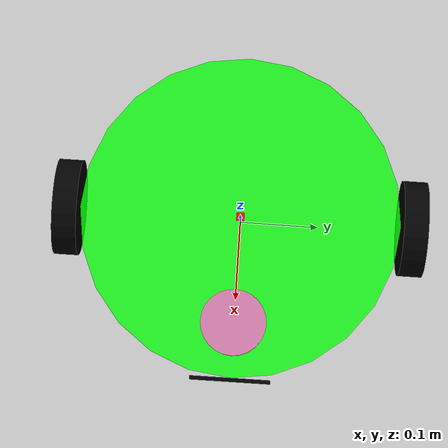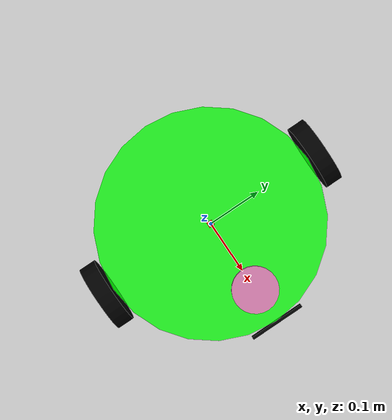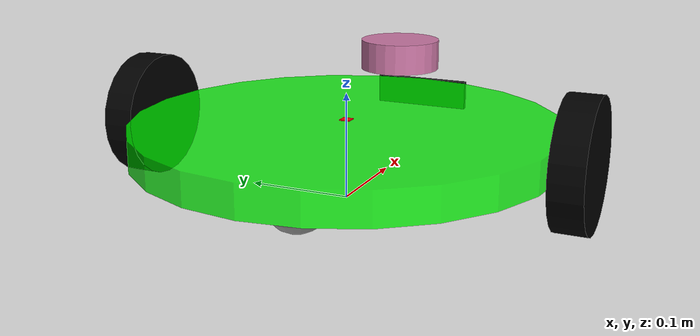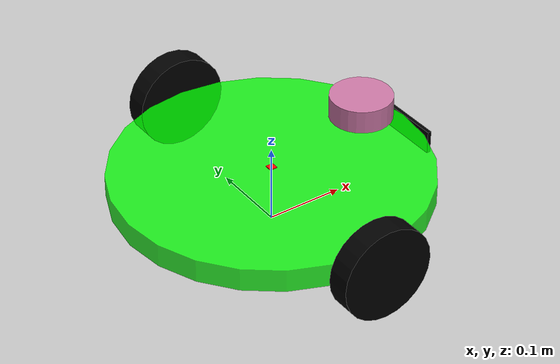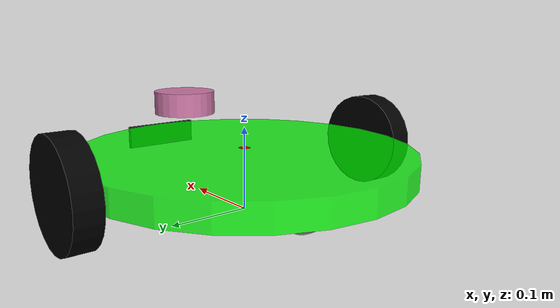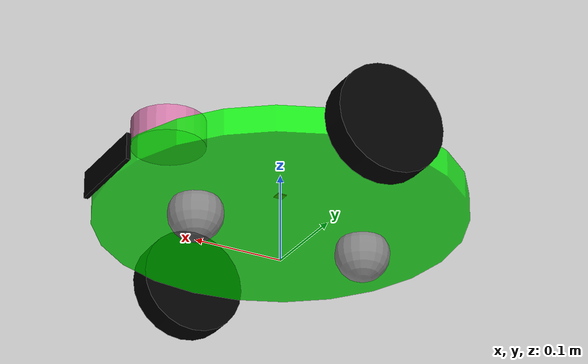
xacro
<?xml version="1.0"?>
<robot name="corbis" xmlns:xacro="htpp://www.ros.org/wiki/xacro">

    <xacro:property name="body_radius" value="0.2"/>
    <xacro:property name="body_height" value="0.03"/>
    <xacro:property name="wheel_radius" value="0.06"/>
    <xacro:property name="wheel_height" value="0.03"/>

    <material name="black">
        <color rgba="0.0 0.0 0.0 1.0"/>
    </material>

    <material name="red">
        <color rgba="1.0 0.0 0.0 1.0"/>
    </material>

    <material name="gray">
        <color rgba="0.5 0.5 0.5 0.8"/>
    </material>

    <material name="green">
        <color rgba="0.0 1.0 0.0 0.8"/>
    </material>

    <link name="base_footprint"/>

    <link name="base_link">
        <visual>
            <geometry>
                <cylinder radius="${body_radius}" length="${body_height}"/>
            </geometry>
            <material name="green"/>
        </visual>

        <collision>
            <geometry>
                <cylinder radius="${body_radius}" length="${body_height}"/>
            </geometry>
        </collision>

        <xacro:inertial_cylinder mass="0.25" length="${body_height}" radius="${body_radius}">
            <origin xyz="0.0 0.0 0.0" rpy="0.0 0.0 0.0"/>
        </xacro:inertial_cylinder>
    </link>

    <joint name="base_joint" type="fixed">
        <parent link="base_footprint"/>
        <child link="base_link"/>
        <origin xyz="0.0 0.0 ${wheel_radius}"/>
    </joint>

    <link name="right_wheel">
        <visual>
            <geometry>
                <cylinder radius="${wheel_radius}" length="${wheel_height}"/>
            </geometry>
            <origin rpy="1.5707 0.0 0.0"/>
            <material name="black"/>
        </visual>

        <collision>
            <geometry>
                <cylinder radius="${wheel_radius}" length="${wheel_height}"/>
            </geometry>
            <origin rpy="1.5707 0.0 0.0"/>
        </collision>

        <xacro:inertial_cylinder mass="0.25" length="${wheel_height}" radius="${wheel_radius}">
            <origin xyz="0.0 0.0 0.0" rpy="1.5707 0.0 0.0"/>
        </xacro:inertial_cylinder>
    </link>

    <joint name="right_joint" type="continuous">
        <parent link="base_link"/>
        <child link="right_wheel"/>
        <origin xyz="0.0 -${body_radius + (wheel_height / 2)} 0.0"/>
        <axis xyz="0.0 1.0 0.0"/>
    </joint>

    <link name="left_wheel">
        <visual>
            <geometry>
                <cylinder radius="${wheel_radius}" length="${wheel_height}"/>
            </geometry>
            <origin rpy="1.5707 0.0 0.0"/>
            <material name="black"/>
        </visual>

        <collision>
            <geometry>
                <cylinder radius="${wheel_radius}" length="${wheel_height}"/>
            </geometry>
            <origin rpy="1.5707 0.0 0.0"/>
        </collision>

        <xacro:inertial_cylinder mass="0.25" length="${wheel_height}" radius="${wheel_radius}">
            <origin xyz="0.0 0.0 0.0" rpy="1.5707 0.0 0.0"/>
        </xacro:inertial_cylinder>
    </link>

    <joint name="left_joint" type="continuous">
        <parent link="base_link"/>
        <child link="left_wheel"/>
        <origin xyz="0.0 ${body_radius + (wheel_height / 2)} 0.0"/>
        <axis xyz="0.0 1.0 0.0"/>
    </joint>

    <link name="front_caster">
        <visual>
            <geometry>
                <sphere radius="${wheel_radius / 2}"/>
            </geometry>
            <material name="gray"/>
        </visual>

        <collision>
            <geometry>
                <sphere radius="${wheel_radius / 2}"/>
            </geometry>
        </collision>

        <xacro:inertial_sphere mass="0.01" radius="${wheel_radius / 2}">
            <origin xyz="0.0 0.0 0.0" rpy="0.0 0.0 0.0"/>
        </xacro:inertial_sphere>
    </link>

    <joint name="front_joint" type="continuous">
        <parent link="base_link"/>
        <child link="front_caster"/>
        <origin xyz="${body_radius / 2} 0.0 -${wheel_radius / 2}"/>
        <axis xyz="0.0 1.0 0.0"/>
    </joint>

    <link name="back_caster">
        <visual>
            <geometry>
                <sphere radius="${wheel_radius / 2}"/>
            </geometry>
            <material name="gray"/>
        </visual>

        <collision>
            <geometry>
                <sphere radius="${wheel_radius / 2}"/>
            </geometry>
        </collision>

        <xacro:inertial_sphere mass="0.01" radius="${wheel_radius / 2}">
            <origin xyz="0.0 0.0 0.0" rpy="0.0 0.0 0.0"/>
        </xacro:inertial_sphere>
    </link>

    <joint name="back_joint" type="continuous">
        <parent link="base_link"/>
        <child link="back_caster"/>
        <origin xyz="-${body_radius / 2} 0.0 -${wheel_radius / 2}"/>
        <axis xyz="0.0 1.0 0.0"/>
    </joint>

    <link name="scan_link">
        <visual>
            <geometry>
                <cylinder radius="0.04" length="0.03"/>
            </geometry>
            <origin xyz="0.0 0.0 -0.0075"/>
        </visual>

        <collision>
            <geometry>
                <cylinder radius="0.04" length="0.03"/>
            </geometry>
            <origin xyz="0.0 0.0 -0.0075"/>
        </collision>

        <xacro:inertial_cylinder mass="0.15" length="0.03" radius="0.04">
            <origin xyz="0.0 0.0 0.0" rpy="0.0 0.0 0.0"/>
        </xacro:inertial_cylinder>
    </link>

    <joint name="scan_joint" type="fixed">
        <parent link="base_link"/>
        <child link="scan_link"/>
        <origin xyz="${body_radius / 1.5} 0.0 ${(body_height / 2) + 0.047}"/>
    </joint>

    <link name="camera_link">
        <visual>
            <geometry>
                <box size="0.005 0.1 0.03"/>
            </geometry>
            <material name="black"/>
        </visual>

        <collision>
            <geometry>
                <box size="0.005 0.1 0.03"/>
            </geometry>
        </collision>

        <xacro:inertial_box mass="0.1" x="0.005" y="0.1" z="0.03">
            <origin xyz="0.0 0.0 0.0" rpy="0.0 0.0 0.0"/>
        </xacro:inertial_box>
    </link>

    <joint name="camera_joint" type="fixed">
        <parent link="base_link"/>
        <child link="camera_link"/>
        <origin xyz="${body_radius + 0.0025} 0.0 0.0"/>
    </joint>

    <link name="imu_link">
        <visual>
            <geometry>
                <box size="0.01 0.01 0.001"/>
            </geometry>
            <material name="red"/>
        </visual>

        <collision>
            <geometry>
                <box size="0.01 0.01 0.001"/>
            </geometry>
        </collision>

        <xacro:inertial_box mass="0.1" x="0.01" y="0.01" z="0.001">
            <origin xyz="0.0 0.0 0.0" rpy="0.0 0.0 0.0"/>
        </xacro:inertial_box>
    </link>

    <joint name="imu_joint" type="fixed">
        <parent link="base_link"/>
        <child link="imu_link"/>
        <origin xyz="0.0 0.0 ${(body_height / 2) + 0.0005}"/>
    </joint>

    <link name="navsat_link"/>

    <joint name="navsat_joint" type="fixed">
        <parent link="base_link"/>
        <child link="navsat_link"/>
    </joint>

</robot>
